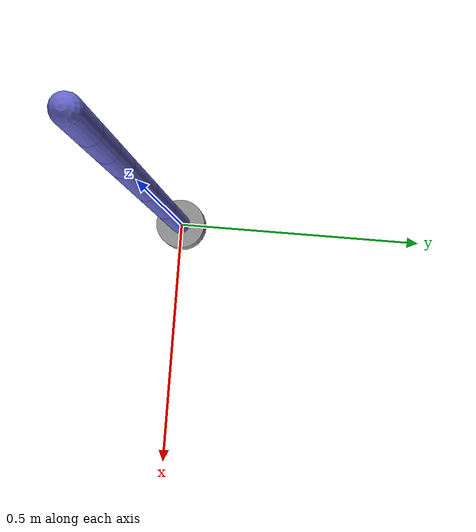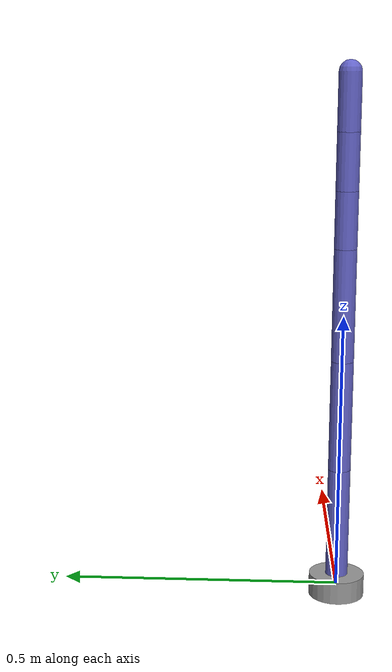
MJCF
<mujoco model="SO100_Arm">
    <compiler angle="radian" coordinate="local" />

    <option gravity="0 0 -9.81" />

    <default>
        <joint limited="true" damping="1" />
        <geom type="capsule" size="0.02 0.1" rgba="0.4 0.4 0.8 1" />
    </default>

    <worldbody>
        <body name="base" pos="0 0 0">
            <geom type="cylinder" size="0.05 0.02" rgba="0.6 0.6 0.6 1" />

            <!-- Joint 1: Base rotation -->
            <body name="link1" pos="0 0 0.02">
                <joint name="joint1" axis="0 0 1" range="-3.14 3.14" />
                <geom fromto="0 0 0 0 0 0.2" />

                <!-- Joint 2: Shoulder -->
                <body name="link2" pos="0 0 0.2">
                    <joint name="joint2" axis="0 1 0" range="-1.57 1.57" />
                    <geom fromto="0 0 0 0 0 0.2" />

                    <!-- Joint 3: Elbow -->
                    <body name="link3" pos="0 0 0.2">
                        <joint name="joint3" axis="0 1 0" range="-1.57 1.57" />
                        <geom fromto="0 0 0 0 0 0.2" />

                        <!-- Joint 4: Wrist pitch -->
                        <body name="link4" pos="0 0 0.2">
                            <joint name="joint4" axis="0 1 0" range="-1.57 1.57" />
                            <geom fromto="0 0 0 0 0 0.1" />

                            <!-- Joint 5: Wrist roll -->
                            <body name="link5" pos="0 0 0.1">
                                <joint name="joint5" axis="1 0 0" range="-3.14 3.14" />
                                <geom fromto="0 0 0 0 0 0.1" />

                                <!-- Joint 6: End-effector rotate -->
                                <body name="link6" pos="0 0 0.1">
                                    <joint name="joint6" axis="0 0 1" range="-3.14 3.14" />
                                    <geom fromto="0 0 0 0 0 0.1" />
                                </body>
                            </body>
                        </body>
                    </body>
                </body>
            </body>
        </body>
    </worldbody>

    <actuator>
        <position joint="joint1" kp="50"/>
        <position joint="joint2" kp="50"/>
        <position joint="joint3" kp="50"/>
        <position joint="joint4" kp="50"/>
        <position joint="joint5" kp="50"/>
        <position joint="joint6" kp="50"/>
    </actuator>
</mujoco>
